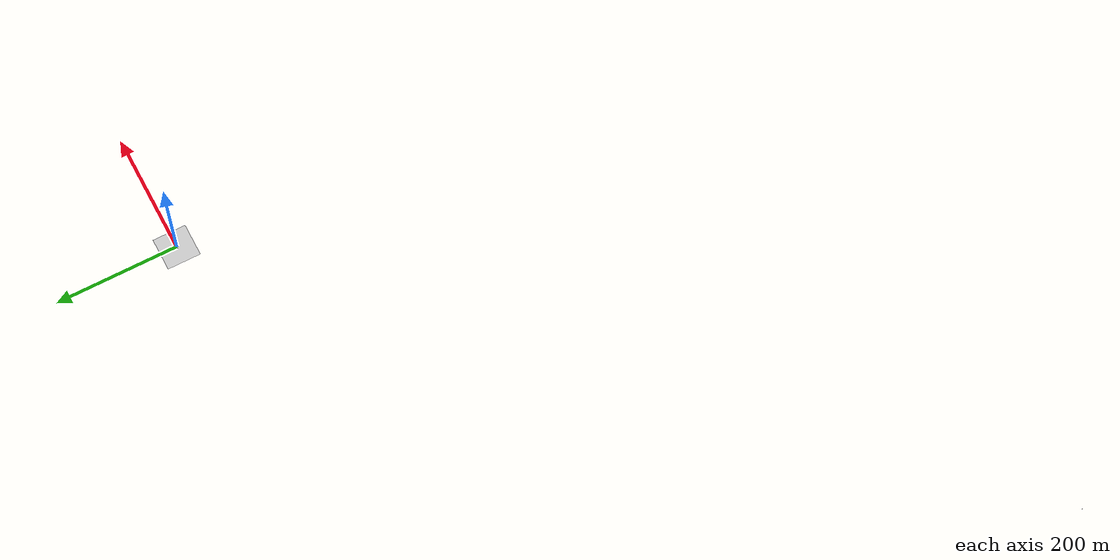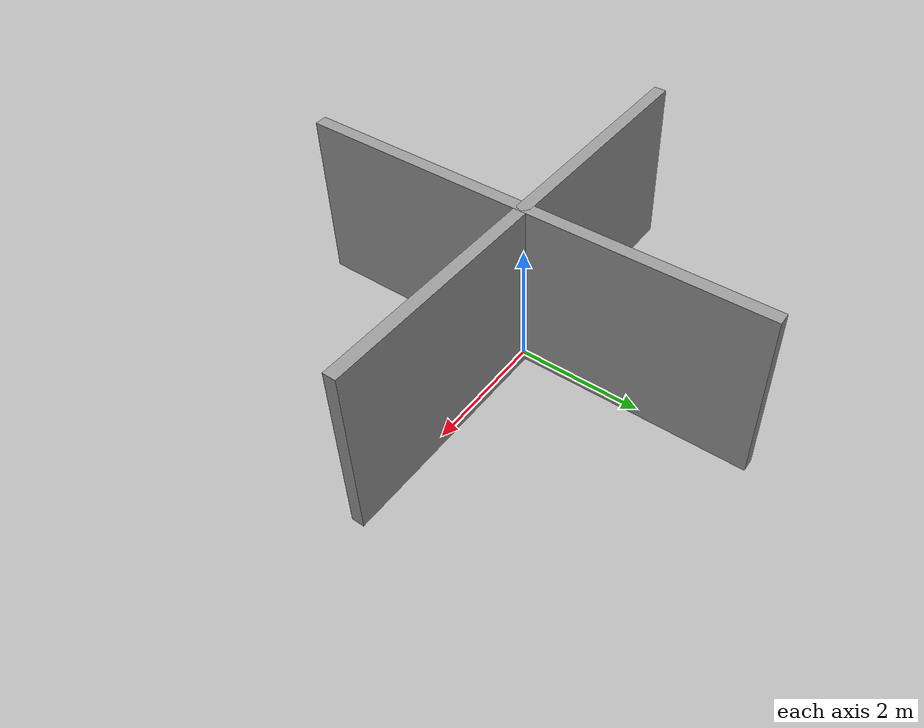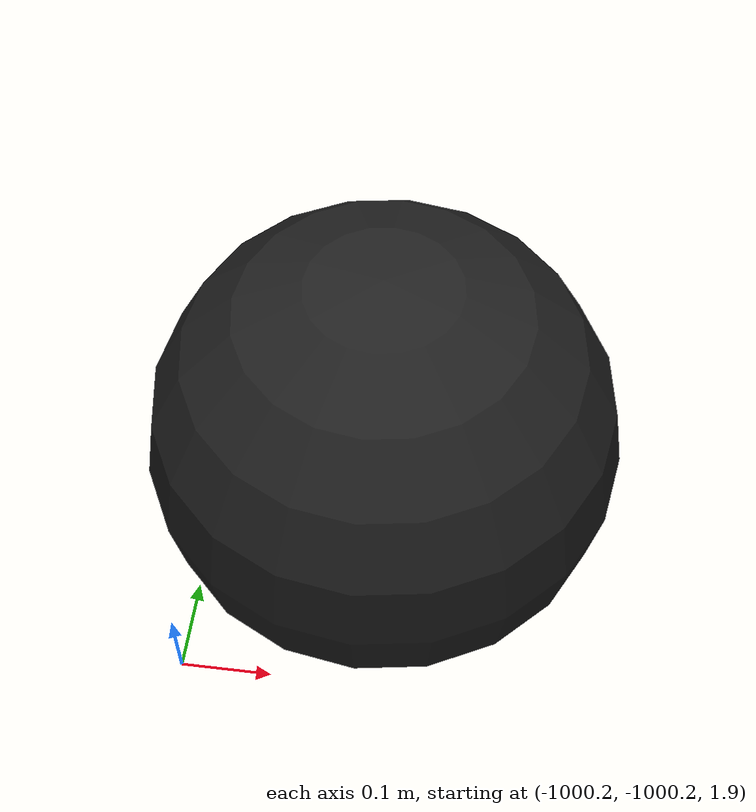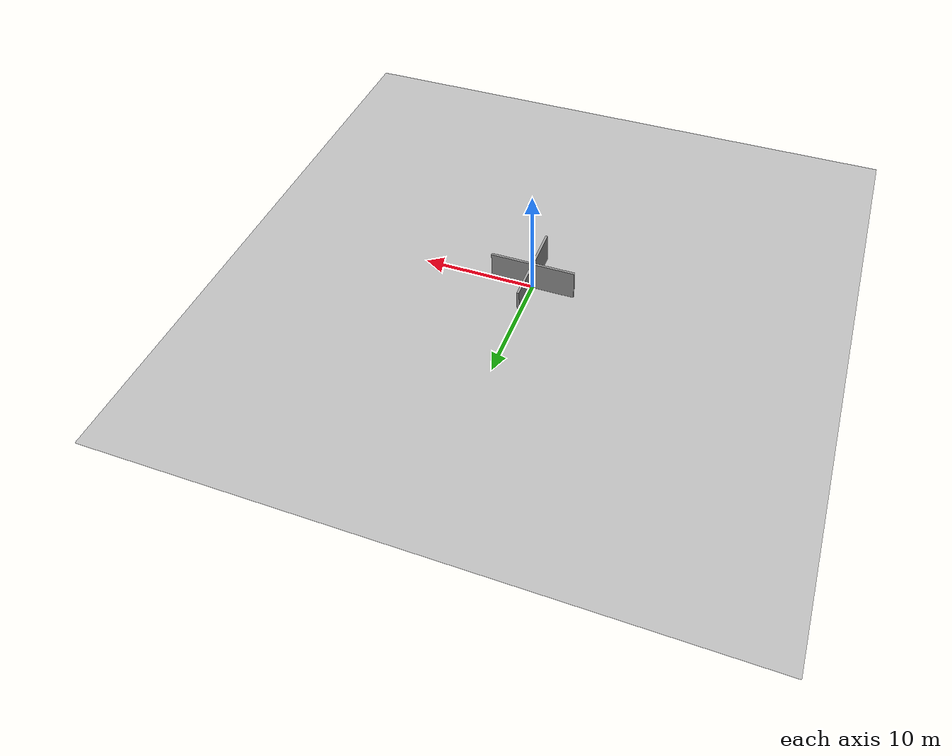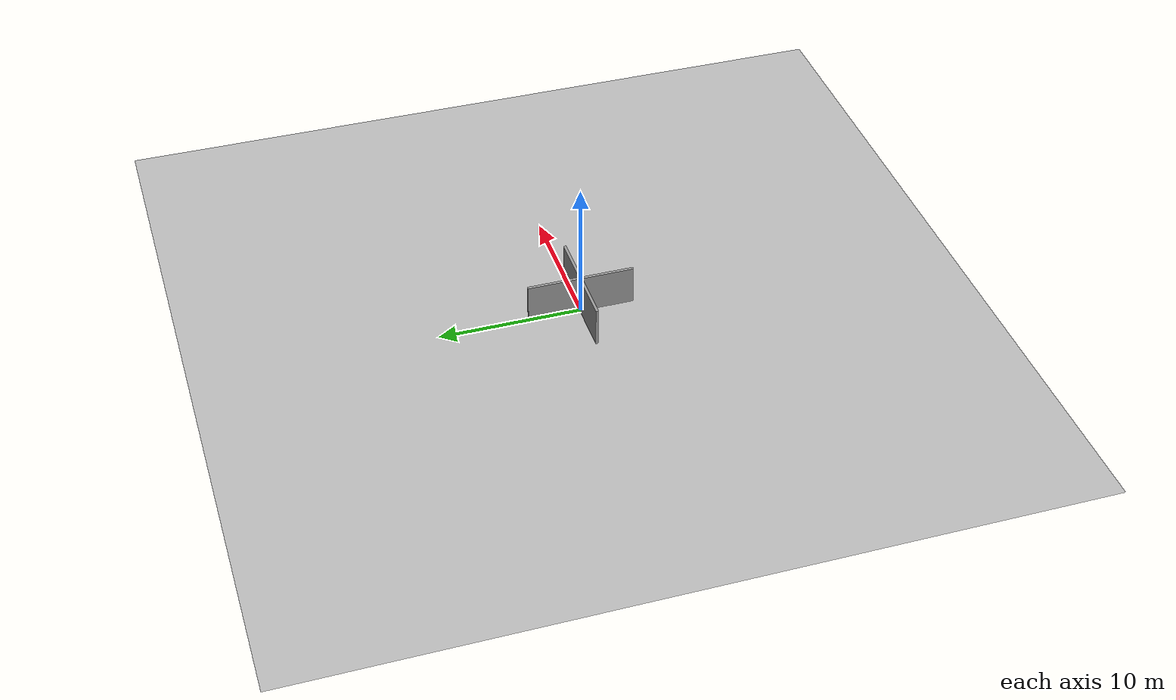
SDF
<?xml version="1.0" ?>
<?xml-model href="http://sdformat.org/schemas/root.xsd" schematypens="http://www.w3.org/2001/XMLSchema"?>
<sdf version="1.5">
  <world name="default">
    <plugin name="mrs_gazebo_static_transform_republisher_plugin" filename="libMRSGazeboStaticTransformRepublisher.so"/>

    <!-- coordinate system {-->
    <spherical_coordinates>
      <surface_model>EARTH_WGS84</surface_model>
      <latitude_deg>47.397743</latitude_deg>
      <longitude_deg>8.545594</longitude_deg>
      <elevation>0.0</elevation>
      <heading_deg>0</heading_deg>
    </spherical_coordinates>

    <!-- physics engine {-->
    <physics name="default_physics" default="0" type="ode">
      <gravity>0 0 -9.8066</gravity>
      <ode>
        <solver>
          <type>quick</type>
          <iters>10</iters>
          <sor>1.3</sor>
          <use_dynamic_moi_rescaling>0</use_dynamic_moi_rescaling>
        </solver>
        <constraints>
          <cfm>0</cfm>
          <erp>0.2</erp>
          <contact_max_correcting_vel>1000</contact_max_correcting_vel>
          <contact_surface_layer>0.001</contact_surface_layer>
        </constraints>
      </ode>
      <max_step_size>0.004</max_step_size>
      <real_time_factor>1</real_time_factor>
      <real_time_update_rate>250</real_time_update_rate>
      <magnetic_field>6.0e-06 2.3e-05 -4.2e-05</magnetic_field>
    </physics>

    <!-- setup shadows {-->
    <scene>
      <shadows>false</shadows>
      <sky>
        <clouds/>
      </sky>
    </scene>

    <!-- sun {-->

    <light name='sun' type='directional'>
      <pose frame=''>0 0 1000 0.4 0.2 0</pose>
      <diffuse>1 1 1 1</diffuse>
      <specular>0.6 0.6 0.6 1</specular>
      <direction>0.1 0.1 -0.9</direction>
      <attenuation>
        <range>20</range>
        <constant>0.5</constant>
        <linear>0.01</linear>
        <quadratic>0.001</quadratic>
      </attenuation>
      <cast_shadows>1</cast_shadows>
    </light>

    <!-- ground plane {-->
    <model name="ground_plane">
      <static>true</static>
      <link name="link">
        <collision name="collision">
          <pose>0 0 0 0 0 0</pose>
          <geometry>
            <plane>
              <normal>0 0 1</normal>
              <size>250 250</size>
            </plane>
          </geometry>
          <surface>
            <friction>
              <ode>
                <mu>1</mu>
                <mu2>1</mu2>
              </ode>
            </friction>
          </surface>
        </collision>
        <visual name="grass">
          <pose>0 0 0 0 0 0</pose>
          <cast_shadows>false</cast_shadows>
          <geometry>
            <mesh>
              <uri>file://grass_plane/meshes/grass_plane.dae</uri>
            </mesh>
          </geometry>
        </visual>
      </link>
    </model>

    <!-- THE VOID (for spawning objects out of camera view) {-->
    <model name='the_void'>
      <static>1</static>
      <link name='link'>
        <pose frame=''>0 0 0.1 0 -0 0</pose>
        <visual name='the_void'>
          <pose frame=''>0 0 2 0 -0 0</pose>
          <geometry>
            <sphere>
              <radius>0.25</radius>
            </sphere>
          </geometry>
          <material>
            <script>
              <uri>file://media/materials/scripts/Gazebo.material</uri>
              <name>Gazebo/Black</name>
            </script>
          </material>
        </visual>
        <self_collide>0</self_collide>
        <enable_wind>0</enable_wind>
        <kinematic>0</kinematic>
      </link>
      <pose frame=''>-1000 -1000 0 0 0 0</pose>
    </model>

    <!-- grey wall lab for test {-->

    <model name='grey_wall'>
      <static>1</static>
      <link name='link'>
        <pose>0 0 1.4 0 -0 0</pose>
        <collision name='collision'>
          <geometry>
            <box>
              <size>7.5 0.2 2.8</size>
            </box>
          </geometry>
          <max_contacts>10</max_contacts>
          <surface>
            <contact>
              <ode/>
            </contact>
            <bounce/>
            <friction>
              <torsional>
                <ode/>
              </torsional>
              <ode/>
            </friction>
          </surface>
        </collision>
        <visual name='visual'>
          <cast_shadows>0</cast_shadows>
          <geometry>
            <box>
              <size>7.5 0.2 2.8</size>
            </box>
          </geometry>
          <material>
            <script>
              <uri>model://grey_wall/materials/scripts</uri>
              <uri>model://grey_wall/materials/textures</uri>
              <name>vrc/grey_wall</name>
            </script>
          </material>
        </visual>
        <self_collide>0</self_collide>
        <enable_wind>0</enable_wind>
        <kinematic>0</kinematic>
      </link>
      <pose>0 0 0 0 -0 0</pose>
    </model>
    <model name='grey_wall_clone'>
      <static>1</static>
      <link name='link'>
        <pose>0 0 1.4 0 -0 1.5707963268</pose>
        <collision name='collision'>
          <geometry>
            <box>
              <size>7.5 0.2 2.8</size>
            </box>
          </geometry>
          <max_contacts>10</max_contacts>
          <surface>
            <contact>
              <ode/>
            </contact>
            <bounce/>
            <friction>
              <torsional>
                <ode/>
              </torsional>
              <ode/>
            </friction>
          </surface>
        </collision>
        <visual name='visual'>
          <cast_shadows>0</cast_shadows>
          <geometry>
            <box>
              <size>7.5 0.2 2.8</size>
            </box>
          </geometry>
          <material>
            <script>
              <uri>model://grey_wall/materials/scripts</uri>
              <uri>model://grey_wall/materials/textures</uri>
              <name>vrc/grey_wall</name>
            </script>
          </material>
        </visual>
        <self_collide>0</self_collide>
        <enable_wind>0</enable_wind>
        <kinematic>0</kinematic>
      </link>
      <pose>0 0 0 0 -0 0</pose>
    </model>

    <!-- user camera {-->
    <gui>
      <camera name="camera">
        <pose>-60 -100 30 0 0.4 0.89</pose>
      </camera>
    </gui>

    <!-- GUI frame synchronization {-->
    <plugin name="mrs_gazebo_rviz_cam_synchronizer" filename="libMRSGazeboRvizCameraSynchronizer.so" >
      <target_frame_id>gazebo_user_camera</target_frame_id>
      <world_origin_frame_id>uav1/gps_origin</world_origin_frame_id>
      <frame_to_follow>uav1</frame_to_follow>
    </plugin>

  </world>
</sdf>
